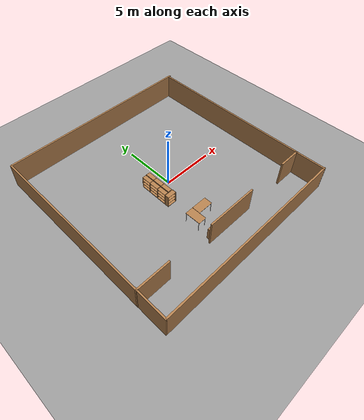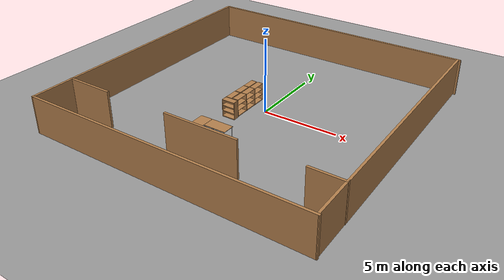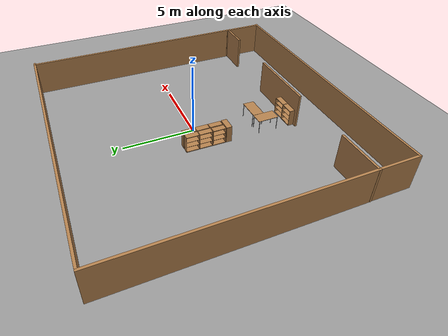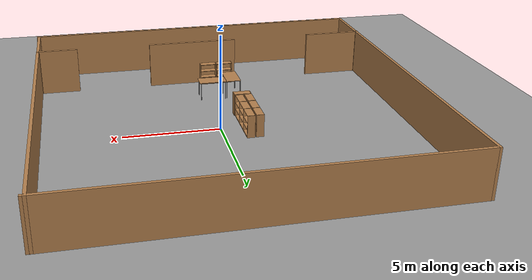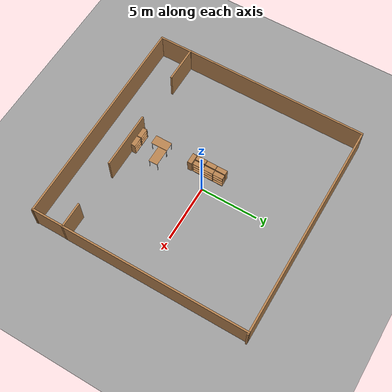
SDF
<sdf version="1.7">
 <world name="default">
  <model name="turtlebot3_house">
   <static>1</static>
   <link name="link">
    <collision name="collision">
     <geometry><plane><normal>0 0 1</normal><size>100 100</size></plane></geometry>
     <surface><friction><ode><mu>100</mu><mu2>50</mu2></ode></friction></surface>
    </collision>
    <visual name="visual">
     <cast_shadows>0</cast_shadows>
     <geometry><plane><normal>0 0 1</normal><size>100 100</size></plane></geometry>
     <material>
      <script><uri>file://media/materials/scripts/gazebo.material</uri><name>Gazebo/Grey</name></script>
     </material>
    </visual>
   </link>
  </model>
  <model name="bookshelf_clone_1_clone_clone_4">
   <static>1</static>
   <link name="link">
    <inertial><mass>1</mass></inertial>
    <collision name="back">
     <pose>0 0.005 0.6 0 -0 0</pose>
     <geometry><box><size>0.9 0.01 1.2</size></box></geometry>
    </collision>
    <visual name="visual1">
     <pose>0 0.005 0.6 0 -0 0</pose>
     <geometry><box><size>0.9 0.01 1.2</size></box></geometry>
     <material>
      <script><uri>file://media/materials/scripts/gazebo.material</uri><name>Gazebo/Wood</name></script>
     </material>
    </visual>
    <collision name="left_side">
     <pose>0.45 -0.195 0.6 0 -0 0</pose>
     <geometry><box><size>0.02 0.4 1.2</size></box></geometry>
    </collision>
    <visual name="visual2">
     <pose>0.45 -0.195 0.6 0 -0 0</pose>
     <geometry><box><size>0.02 0.4 1.2</size></box></geometry>
     <material>
      <script><uri>file://media/materials/scripts/gazebo.material</uri><name>Gazebo/Wood</name></script>
     </material>
    </visual>
    <collision name="right_side">
     <pose>-0.45 -0.195 0.6 0 -0 0</pose>
     <geometry><box><size>0.02 0.4 1.2</size></box></geometry>
    </collision>
    <visual name="visual3">
     <pose>-0.45 -0.195 0.6 0 -0 0</pose>
     <geometry><box><size>0.02 0.4 1.2</size></box></geometry>
     <material>
      <script><uri>file://media/materials/scripts/gazebo.material</uri><name>Gazebo/Wood</name></script>
     </material>
    </visual>
    <collision name="bottom">
     <pose>0 -0.195 0.03 0 -0 0</pose>
     <geometry><box><size>0.88 0.4 0.06</size></box></geometry>
    </collision>
    <visual name="visual4">
     <pose>0 -0.195 0.03 0 -0 0</pose>
     <geometry><box><size>0.88 0.4 0.06</size></box></geometry>
     <material>
      <script><uri>file://media/materials/scripts/gazebo.material</uri><name>Gazebo/Wood</name></script>
     </material>
    </visual>
    <collision name="top">
     <pose>0 -0.195 1.19 0 -0 0</pose>
     <geometry><box><size>0.88 0.4 0.02</size></box></geometry>
    </collision>
    <visual name="visual5">
     <pose>0 -0.195 1.19 0 -0 0</pose>
     <geometry><box><size>0.88 0.4 0.02</size></box></geometry>
     <material>
      <script><uri>file://media/materials/scripts/gazebo.material</uri><name>Gazebo/Wood</name></script>
     </material>
    </visual>
    <collision name="low_shelf">
     <pose>0 -0.195 0.43 0 -0 0</pose>
     <geometry><box><size>0.88 0.4 0.02</size></box></geometry>
    </collision>
    <visual name="visual6">
     <pose>0 -0.195 0.43 0 -0 0</pose>
     <geometry><box><size>0.88 0.4 0.02</size></box></geometry>
     <material>
      <script><uri>file://media/materials/scripts/gazebo.material</uri><name>Gazebo/Wood</name></script>
     </material>
    </visual>
    <collision name="high_shelf">
     <pose>0 -0.195 0.8 0 -0 0</pose>
     <geometry><box><size>0.88 0.4 0.02</size></box></geometry>
    </collision>
    <visual name="visual7">
     <pose>0 -0.195 0.8 0 -0 0</pose>
     <geometry><box><size>0.88 0.4 0.02</size></box></geometry>
     <material>
      <script><uri>file://media/materials/scripts/gazebo.material</uri><name>Gazebo/Wood</name></script>
     </material>
    </visual>
   </link>
   <pose>-0.54357 -6.77017 0 0 0 -3.12822</pose>
  </model>
  <model name="bookshelf_clone_1_clone_clone_5">
   <static>1</static>
   <link name="link">
    <inertial><mass>1</mass></inertial>
    <collision name="back">
     <pose>0 0.005 0.6 0 -0 0</pose>
     <geometry><box><size>0.9 0.01 1.2</size></box></geometry>
    </collision>
    <visual name="visual1">
     <pose>0 0.005 0.6 0 -0 0</pose>
     <geometry><box><size>0.9 0.01 1.2</size></box></geometry>
     <material>
      <script><uri>file://media/materials/scripts/gazebo.material</uri><name>Gazebo/Wood</name></script>
     </material>
    </visual>
    <collision name="left_side">
     <pose>0.45 -0.195 0.6 0 -0 0</pose>
     <geometry><box><size>0.02 0.4 1.2</size></box></geometry>
    </collision>
    <visual name="visual2">
     <pose>0.45 -0.195 0.6 0 -0 0</pose>
     <geometry><box><size>0.02 0.4 1.2</size></box></geometry>
     <material>
      <script><uri>file://media/materials/scripts/gazebo.material</uri><name>Gazebo/Wood</name></script>
     </material>
    </visual>
    <collision name="right_side">
     <pose>-0.45 -0.195 0.6 0 -0 0</pose>
     <geometry><box><size>0.02 0.4 1.2</size></box></geometry>
    </collision>
    <visual name="visual3">
     <pose>-0.45 -0.195 0.6 0 -0 0</pose>
     <geometry><box><size>0.02 0.4 1.2</size></box></geometry>
     <material>
      <script><uri>file://media/materials/scripts/gazebo.material</uri><name>Gazebo/Wood</name></script>
     </material>
    </visual>
    <collision name="bottom">
     <pose>0 -0.195 0.03 0 -0 0</pose>
     <geometry><box><size>0.88 0.4 0.06</size></box></geometry>
    </collision>
    <visual name="visual4">
     <pose>0 -0.195 0.03 0 -0 0</pose>
     <geometry><box><size>0.88 0.4 0.06</size></box></geometry>
     <material>
      <script><uri>file://media/materials/scripts/gazebo.material</uri><name>Gazebo/Wood</name></script>
     </material>
    </visual>
    <collision name="top">
     <pose>0 -0.195 1.19 0 -0 0</pose>
     <geometry><box><size>0.88 0.4 0.02</size></box></geometry>
    </collision>
    <visual name="visual5">
     <pose>0 -0.195 1.19 0 -0 0</pose>
     <geometry><box><size>0.88 0.4 0.02</size></box></geometry>
     <material>
      <script><uri>file://media/materials/scripts/gazebo.material</uri><name>Gazebo/Wood</name></script>
     </material>
    </visual>
    <collision name="low_shelf">
     <pose>0 -0.195 0.43 0 -0 0</pose>
     <geometry><box><size>0.88 0.4 0.02</size></box></geometry>
    </collision>
    <visual name="visual6">
     <pose>0 -0.195 0.43 0 -0 0</pose>
     <geometry><box><size>0.88 0.4 0.02</size></box></geometry>
     <material>
      <script><uri>file://media/materials/scripts/gazebo.material</uri><name>Gazebo/Wood</name></script>
     </material>
    </visual>
    <collision name="high_shelf">
     <pose>0 -0.195 0.8 0 -0 0</pose>
     <geometry><box><size>0.88 0.4 0.02</size></box></geometry>
    </collision>
    <visual name="visual7">
     <pose>0 -0.195 0.8 0 -0 0</pose>
     <geometry><box><size>0.88 0.4 0.02</size></box></geometry>
     <material>
      <script><uri>file://media/materials/scripts/gazebo.material</uri><name>Gazebo/Wood</name></script>
     </material>
    </visual>
   </link>
   <pose>-1.47846 -6.76423 0 0 0 -3.12822</pose>
  </model>
  <model name="bookshelf_clone_3">
   <static>1</static>
   <link name="link">
    <inertial><mass>1</mass></inertial>
    <collision name="back">
     <pose>0 0.005 0.6 0 -0 0</pose>
     <geometry><box><size>0.9 0.01 1.2</size></box></geometry>
    </collision>
    <visual name="visual1">
     <pose>0 0.005 0.6 0 -0 0</pose>
     <geometry><box><size>0.9 0.01 1.2</size></box></geometry>
     <material>
      <script><uri>file://media/materials/scripts/gazebo.material</uri><name>Gazebo/Wood</name></script>
     </material>
    </visual>
    <collision name="left_side">
     <pose>0.45 -0.195 0.6 0 -0 0</pose>
     <geometry><box><size>0.02 0.4 1.2</size></box></geometry>
    </collision>
    <visual name="visual2">
     <pose>0.45 -0.195 0.6 0 -0 0</pose>
     <geometry><box><size>0.02 0.4 1.2</size></box></geometry>
     <material>
      <script><uri>file://media/materials/scripts/gazebo.material</uri><name>Gazebo/Wood</name></script>
     </material>
    </visual>
    <collision name="right_side">
     <pose>-0.45 -0.195 0.6 0 -0 0</pose>
     <geometry><box><size>0.02 0.4 1.2</size></box></geometry>
    </collision>
    <visual name="visual3">
     <pose>-0.45 -0.195 0.6 0 -0 0</pose>
     <geometry><box><size>0.02 0.4 1.2</size></box></geometry>
     <material>
      <script><uri>file://media/materials/scripts/gazebo.material</uri><name>Gazebo/Wood</name></script>
     </material>
    </visual>
    <collision name="bottom">
     <pose>0 -0.195 0.03 0 -0 0</pose>
     <geometry><box><size>0.88 0.4 0.06</size></box></geometry>
    </collision>
    <visual name="visual4">
     <pose>0 -0.195 0.03 0 -0 0</pose>
     <geometry><box><size>0.88 0.4 0.06</size></box></geometry>
     <material>
      <script><uri>file://media/materials/scripts/gazebo.material</uri><name>Gazebo/Wood</name></script>
     </material>
    </visual>
    <collision name="top">
     <pose>0 -0.195 1.19 0 -0 0</pose>
     <geometry><box><size>0.88 0.4 0.02</size></box></geometry>
    </collision>
    <visual name="visual5">
     <pose>0 -0.195 1.19 0 -0 0</pose>
     <geometry><box><size>0.88 0.4 0.02</size></box></geometry>
     <material>
      <script><uri>file://media/materials/scripts/gazebo.material</uri><name>Gazebo/Wood</name></script>
     </material>
    </visual>
    <collision name="low_shelf">
     <pose>0 -0.195 0.43 0 -0 0</pose>
     <geometry><box><size>0.88 0.4 0.02</size></box></geometry>
    </collision>
    <visual name="visual6">
     <pose>0 -0.195 0.43 0 -0 0</pose>
     <geometry><box><size>0.88 0.4 0.02</size></box></geometry>
     <material>
      <script><uri>file://media/materials/scripts/gazebo.material</uri><name>Gazebo/Wood</name></script>
     </material>
    </visual>
    <collision name="high_shelf">
     <pose>0 -0.195 0.8 0 -0 0</pose>
     <geometry><box><size>0.88 0.4 0.02</size></box></geometry>
    </collision>
    <visual name="visual7">
     <pose>0 -0.195 0.8 0 -0 0</pose>
     <geometry><box><size>0.88 0.4 0.02</size></box></geometry>
     <material>
      <script><uri>file://media/materials/scripts/gazebo.material</uri><name>Gazebo/Wood</name></script>
     </material>
    </visual>
   </link>
   <pose>-1.49506 -1.57268 0 0 -0 0</pose>
  </model>
  <model name="bookshelf_clone_2_clone_7">
   <static>1</static>
   <link name="link">
    <inertial><mass>1</mass></inertial>
    <collision name="back">
     <pose>0 0.005 0.6 0 -0 0</pose>
     <geometry><box><size>0.9 0.01 1.2</size></box></geometry>
    </collision>
    <visual name="visual1">
     <pose>0 0.005 0.6 0 -0 0</pose>
     <geometry><box><size>0.9 0.01 1.2</size></box></geometry>
     <material>
      <script><uri>file://media/materials/scripts/gazebo.material</uri><name>Gazebo/Wood</name></script>
     </material>
    </visual>
    <collision name="left_side">
     <pose>0.45 -0.195 0.6 0 -0 0</pose>
     <geometry><box><size>0.02 0.4 1.2</size></box></geometry>
    </collision>
    <visual name="visual2">
     <pose>0.45 -0.195 0.6 0 -0 0</pose>
     <geometry><box><size>0.02 0.4 1.2</size></box></geometry>
     <material>
      <script><uri>file://media/materials/scripts/gazebo.material</uri><name>Gazebo/Wood</name></script>
     </material>
    </visual>
    <collision name="right_side">
     <pose>-0.45 -0.195 0.6 0 -0 0</pose>
     <geometry><box><size>0.02 0.4 1.2</size></box></geometry>
    </collision>
    <visual name="visual3">
     <pose>-0.45 -0.195 0.6 0 -0 0</pose>
     <geometry><box><size>0.02 0.4 1.2</size></box></geometry>
     <material>
      <script><uri>file://media/materials/scripts/gazebo.material</uri><name>Gazebo/Wood</name></script>
     </material>
    </visual>
    <collision name="bottom">
     <pose>0 -0.195 0.03 0 -0 0</pose>
     <geometry><box><size>0.88 0.4 0.06</size></box></geometry>
    </collision>
    <visual name="visual4">
     <pose>0 -0.195 0.03 0 -0 0</pose>
     <geometry><box><size>0.88 0.4 0.06</size></box></geometry>
     <material>
      <script><uri>file://media/materials/scripts/gazebo.material</uri><name>Gazebo/Wood</name></script>
     </material>
    </visual>
    <collision name="top">
     <pose>0 -0.195 1.19 0 -0 0</pose>
     <geometry><box><size>0.88 0.4 0.02</size></box></geometry>
    </collision>
    <visual name="visual5">
     <pose>0 -0.195 1.19 0 -0 0</pose>
     <geometry><box><size>0.88 0.4 0.02</size></box></geometry>
     <material>
      <script><uri>file://media/materials/scripts/gazebo.material</uri><name>Gazebo/Wood</name></script>
     </material>
    </visual>
    <collision name="low_shelf">
     <pose>0 -0.195 0.43 0 -0 0</pose>
     <geometry><box><size>0.88 0.4 0.02</size></box></geometry>
    </collision>
    <visual name="visual6">
     <pose>0 -0.195 0.43 0 -0 0</pose>
     <geometry><box><size>0.88 0.4 0.02</size></box></geometry>
     <material>
      <script><uri>file://media/materials/scripts/gazebo.material</uri><name>Gazebo/Wood</name></script>
     </material>
    </visual>
    <collision name="high_shelf">
     <pose>0 -0.195 0.8 0 -0 0</pose>
     <geometry><box><size>0.88 0.4 0.02</size></box></geometry>
    </collision>
    <visual name="visual7">
     <pose>0 -0.195 0.8 0 -0 0</pose>
     <geometry><box><size>0.88 0.4 0.02</size></box></geometry>
     <material>
      <script><uri>file://media/materials/scripts/gazebo.material</uri><name>Gazebo/Wood</name></script>
     </material>
    </visual>
   </link>
   <pose>-1.55839 -1.06853 0 0 0 -1.57136</pose>
  </model>
  <model name="bookshelf_clone_2_clone_8">
   <static>1</static>
   <link name="link">
    <inertial><mass>1</mass></inertial>
    <collision name="back">
     <pose>0 0.005 0.6 0 -0 0</pose>
     <geometry><box><size>0.9 0.01 1.2</size></box></geometry>
    </collision>
    <visual name="visual1">
     <pose>0 0.005 0.6 0 -0 0</pose>
     <geometry><box><size>0.9 0.01 1.2</size></box></geometry>
     <material>
      <script><uri>file://media/materials/scripts/gazebo.material</uri><name>Gazebo/Wood</name></script>
     </material>
    </visual>
    <collision name="left_side">
     <pose>0.45 -0.195 0.6 0 -0 0</pose>
     <geometry><box><size>0.02 0.4 1.2</size></box></geometry>
    </collision>
    <visual name="visual2">
     <pose>0.45 -0.195 0.6 0 -0 0</pose>
     <geometry><box><size>0.02 0.4 1.2</size></box></geometry>
     <material>
      <script><uri>file://media/materials/scripts/gazebo.material</uri><name>Gazebo/Wood</name></script>
     </material>
    </visual>
    <collision name="right_side">
     <pose>-0.45 -0.195 0.6 0 -0 0</pose>
     <geometry><box><size>0.02 0.4 1.2</size></box></geometry>
    </collision>
    <visual name="visual3">
     <pose>-0.45 -0.195 0.6 0 -0 0</pose>
     <geometry><box><size>0.02 0.4 1.2</size></box></geometry>
     <material>
      <script><uri>file://media/materials/scripts/gazebo.material</uri><name>Gazebo/Wood</name></script>
     </material>
    </visual>
    <collision name="bottom">
     <pose>0 -0.195 0.03 0 -0 0</pose>
     <geometry><box><size>0.88 0.4 0.06</size></box></geometry>
    </collision>
    <visual name="visual4">
     <pose>0 -0.195 0.03 0 -0 0</pose>
     <geometry><box><size>0.88 0.4 0.06</size></box></geometry>
     <material>
      <script><uri>file://media/materials/scripts/gazebo.material</uri><name>Gazebo/Wood</name></script>
     </material>
    </visual>
    <collision name="top">
     <pose>0 -0.195 1.19 0 -0 0</pose>
     <geometry><box><size>0.88 0.4 0.02</size></box></geometry>
    </collision>
    <visual name="visual5">
     <pose>0 -0.195 1.19 0 -0 0</pose>
     <geometry><box><size>0.88 0.4 0.02</size></box></geometry>
     <material>
      <script><uri>file://media/materials/scripts/gazebo.material</uri><name>Gazebo/Wood</name></script>
     </material>
    </visual>
    <collision name="low_shelf">
     <pose>0 -0.195 0.43 0 -0 0</pose>
     <geometry><box><size>0.88 0.4 0.02</size></box></geometry>
    </collision>
    <visual name="visual6">
     <pose>0 -0.195 0.43 0 -0 0</pose>
     <geometry><box><size>0.88 0.4 0.02</size></box></geometry>
     <material>
      <script><uri>file://media/materials/scripts/gazebo.material</uri><name>Gazebo/Wood</name></script>
     </material>
    </visual>
    <collision name="high_shelf">
     <pose>0 -0.195 0.8 0 -0 0</pose>
     <geometry><box><size>0.88 0.4 0.02</size></box></geometry>
    </collision>
    <visual name="visual7">
     <pose>0 -0.195 0.8 0 -0 0</pose>
     <geometry><box><size>0.88 0.4 0.02</size></box></geometry>
     <material>
      <script><uri>file://media/materials/scripts/gazebo.material</uri><name>Gazebo/Wood</name></script>
     </material>
    </visual>
   </link>
   <pose>-1.55046 -0.125995 0 0 0 -1.57136</pose>
  </model>
  <model name="bookshelf_clone_2_clone_9">
   <static>1</static>
   <link name="link">
    <inertial><mass>1</mass></inertial>
    <collision name="back">
     <pose>0 0.005 0.6 0 -0 0</pose>
     <geometry><box><size>0.9 0.01 1.2</size></box></geometry>
    </collision>
    <visual name="visual1">
     <pose>0 0.005 0.6 0 -0 0</pose>
     <geometry><box><size>0.9 0.01 1.2</size></box></geometry>
     <material>
      <script><uri>file://media/materials/scripts/gazebo.material</uri><name>Gazebo/Wood</name></script>
     </material>
    </visual>
    <collision name="left_side">
     <pose>0.45 -0.195 0.6 0 -0 0</pose>
     <geometry><box><size>0.02 0.4 1.2</size></box></geometry>
    </collision>
    <visual name="visual2">
     <pose>0.45 -0.195 0.6 0 -0 0</pose>
     <geometry><box><size>0.02 0.4 1.2</size></box></geometry>
     <material>
      <script><uri>file://media/materials/scripts/gazebo.material</uri><name>Gazebo/Wood</name></script>
     </material>
    </visual>
    <collision name="right_side">
     <pose>-0.45 -0.195 0.6 0 -0 0</pose>
     <geometry><box><size>0.02 0.4 1.2</size></box></geometry>
    </collision>
    <visual name="visual3">
     <pose>-0.45 -0.195 0.6 0 -0 0</pose>
     <geometry><box><size>0.02 0.4 1.2</size></box></geometry>
     <material>
      <script><uri>file://media/materials/scripts/gazebo.material</uri><name>Gazebo/Wood</name></script>
     </material>
    </visual>
    <collision name="bottom">
     <pose>0 -0.195 0.03 0 -0 0</pose>
     <geometry><box><size>0.88 0.4 0.06</size></box></geometry>
    </collision>
    <visual name="visual4">
     <pose>0 -0.195 0.03 0 -0 0</pose>
     <geometry><box><size>0.88 0.4 0.06</size></box></geometry>
     <material>
      <script><uri>file://media/materials/scripts/gazebo.material</uri><name>Gazebo/Wood</name></script>
     </material>
    </visual>
    <collision name="top">
     <pose>0 -0.195 1.19 0 -0 0</pose>
     <geometry><box><size>0.88 0.4 0.02</size></box></geometry>
    </collision>
    <visual name="visual5">
     <pose>0 -0.195 1.19 0 -0 0</pose>
     <geometry><box><size>0.88 0.4 0.02</size></box></geometry>
     <material>
      <script><uri>file://media/materials/scripts/gazebo.material</uri><name>Gazebo/Wood</name></script>
     </material>
    </visual>
    <collision name="low_shelf">
     <pose>0 -0.195 0.43 0 -0 0</pose>
     <geometry><box><size>0.88 0.4 0.02</size></box></geometry>
    </collision>
    <visual name="visual6">
     <pose>0 -0.195 0.43 0 -0 0</pose>
     <geometry><box><size>0.88 0.4 0.02</size></box></geometry>
     <material>
      <script><uri>file://media/materials/scripts/gazebo.material</uri><name>Gazebo/Wood</name></script>
     </material>
    </visual>
    <collision name="high_shelf">
     <pose>0 -0.195 0.8 0 -0 0</pose>
     <geometry><box><size>0.88 0.4 0.02</size></box></geometry>
    </collision>
    <visual name="visual7">
     <pose>0 -0.195 0.8 0 -0 0</pose>
     <geometry><box><size>0.88 0.4 0.02</size></box></geometry>
     <material>
      <script><uri>file://media/materials/scripts/gazebo.material</uri><name>Gazebo/Wood</name></script>
     </material>
    </visual>
   </link>
   <pose>-1.54661 0.804727 0 0 0 -1.57136</pose>
  </model>
  <model name="bookshelf_clone_2_clone_clone_0_clone_3_clone_clone_3">
   <static>1</static>
   <link name="link">
    <inertial><mass>1</mass></inertial>
    <collision name="back">
     <pose>0 0.005 0.6 0 -0 0</pose>
     <geometry><box><size>0.9 0.01 1.2</size></box></geometry>
    </collision>
    <visual name="visual1">
     <pose>0 0.005 0.6 0 -0 0</pose>
     <geometry><box><size>0.9 0.01 1.2</size></box></geometry>
     <material>
      <script><uri>file://media/materials/scripts/gazebo.material</uri><name>Gazebo/Wood</name></script>
     </material>
    </visual>
    <collision name="left_side">
     <pose>0.45 -0.195 0.6 0 -0 0</pose>
     <geometry><box><size>0.02 0.4 1.2</size></box></geometry>
    </collision>
    <visual name="visual2">
     <pose>0.45 -0.195 0.6 0 -0 0</pose>
     <geometry><box><size>0.02 0.4 1.2</size></box></geometry>
     <material>
      <script><uri>file://media/materials/scripts/gazebo.material</uri><name>Gazebo/Wood</name></script>
     </material>
    </visual>
    <collision name="right_side">
     <pose>-0.45 -0.195 0.6 0 -0 0</pose>
     <geometry><box><size>0.02 0.4 1.2</size></box></geometry>
    </collision>
    <visual name="visual3">
     <pose>-0.45 -0.195 0.6 0 -0 0</pose>
     <geometry><box><size>0.02 0.4 1.2</size></box></geometry>
     <material>
      <script><uri>file://media/materials/scripts/gazebo.material</uri><name>Gazebo/Wood</name></script>
     </material>
    </visual>
    <collision name="bottom">
     <pose>0 -0.195 0.03 0 -0 0</pose>
     <geometry><box><size>0.88 0.4 0.06</size></box></geometry>
    </collision>
    <visual name="visual4">
     <pose>0 -0.195 0.03 0 -0 0</pose>
     <geometry><box><size>0.88 0.4 0.06</size></box></geometry>
     <material>
      <script><uri>file://media/materials/scripts/gazebo.material</uri><name>Gazebo/Wood</name></script>
     </material>
    </visual>
    <collision name="top">
     <pose>0 -0.195 1.19 0 -0 0</pose>
     <geometry><box><size>0.88 0.4 0.02</size></box></geometry>
    </collision>
    <visual name="visual5">
     <pose>0 -0.195 1.19 0 -0 0</pose>
     <geometry><box><size>0.88 0.4 0.02</size></box></geometry>
     <material>
      <script><uri>file://media/materials/scripts/gazebo.material</uri><name>Gazebo/Wood</name></script>
     </material>
    </visual>
    <collision name="low_shelf">
     <pose>0 -0.195 0.43 0 -0 0</pose>
     <geometry><box><size>0.88 0.4 0.02</size></box></geometry>
    </collision>
    <visual name="visual6">
     <pose>0 -0.195 0.43 0 -0 0</pose>
     <geometry><box><size>0.88 0.4 0.02</size></box></geometry>
     <material>
      <script><uri>file://media/materials/scripts/gazebo.material</uri><name>Gazebo/Wood</name></script>
     </material>
    </visual>
    <collision name="high_shelf">
     <pose>0 -0.195 0.8 0 -0 0</pose>
     <geometry><box><size>0.88 0.4 0.02</size></box></geometry>
    </collision>
    <visual name="visual7">
     <pose>0 -0.195 0.8 0 -0 0</pose>
     <geometry><box><size>0.88 0.4 0.02</size></box></geometry>
     <material>
      <script><uri>file://media/materials/scripts/gazebo.material</uri><name>Gazebo/Wood</name></script>
     </material>
    </visual>
   </link>
   <pose>-1.47001 0.822173 0 0 -0 1.57553</pose>
  </model>
  <model name="bookshelf_clone_2_clone_clone_0_clone_3_clone_clone_4">
   <static>1</static>
   <link name="link">
    <inertial><mass>1</mass></inertial>
    <collision name="back">
     <pose>0 0.005 0.6 0 -0 0</pose>
     <geometry><box><size>0.9 0.01 1.2</size></box></geometry>
    </collision>
    <visual name="visual1">
     <pose>0 0.005 0.6 0 -0 0</pose>
     <geometry><box><size>0.9 0.01 1.2</size></box></geometry>
     <material>
      <script><uri>file://media/materials/scripts/gazebo.material</uri><name>Gazebo/Wood</name></script>
     </material>
    </visual>
    <collision name="left_side">
     <pose>0.45 -0.195 0.6 0 -0 0</pose>
     <geometry><box><size>0.02 0.4 1.2</size></box></geometry>
    </collision>
    <visual name="visual2">
     <pose>0.45 -0.195 0.6 0 -0 0</pose>
     <geometry><box><size>0.02 0.4 1.2</size></box></geometry>
     <material>
      <script><uri>file://media/materials/scripts/gazebo.material</uri><name>Gazebo/Wood</name></script>
     </material>
    </visual>
    <collision name="right_side">
     <pose>-0.45 -0.195 0.6 0 -0 0</pose>
     <geometry><box><size>0.02 0.4 1.2</size></box></geometry>
    </collision>
    <visual name="visual3">
     <pose>-0.45 -0.195 0.6 0 -0 0</pose>
     <geometry><box><size>0.02 0.4 1.2</size></box></geometry>
     <material>
      <script><uri>file://media/materials/scripts/gazebo.material</uri><name>Gazebo/Wood</name></script>
     </material>
    </visual>
    <collision name="bottom">
     <pose>0 -0.195 0.03 0 -0 0</pose>
     <geometry><box><size>0.88 0.4 0.06</size></box></geometry>
    </collision>
    <visual name="visual4">
     <pose>0 -0.195 0.03 0 -0 0</pose>
     <geometry><box><size>0.88 0.4 0.06</size></box></geometry>
     <material>
      <script><uri>file://media/materials/scripts/gazebo.material</uri><name>Gazebo/Wood</name></script>
     </material>
    </visual>
    <collision name="top">
     <pose>0 -0.195 1.19 0 -0 0</pose>
     <geometry><box><size>0.88 0.4 0.02</size></box></geometry>
    </collision>
    <visual name="visual5">
     <pose>0 -0.195 1.19 0 -0 0</pose>
     <geometry><box><size>0.88 0.4 0.02</size></box></geometry>
     <material>
      <script><uri>file://media/materials/scripts/gazebo.material</uri><name>Gazebo/Wood</name></script>
     </material>
    </visual>
    <collision name="low_shelf">
     <pose>0 -0.195 0.43 0 -0 0</pose>
     <geometry><box><size>0.88 0.4 0.02</size></box></geometry>
    </collision>
    <visual name="visual6">
     <pose>0 -0.195 0.43 0 -0 0</pose>
     <geometry><box><size>0.88 0.4 0.02</size></box></geometry>
     <material>
      <script><uri>file://media/materials/scripts/gazebo.material</uri><name>Gazebo/Wood</name></script>
     </material>
    </visual>
    <collision name="high_shelf">
     <pose>0 -0.195 0.8 0 -0 0</pose>
     <geometry><box><size>0.88 0.4 0.02</size></box></geometry>
    </collision>
    <visual name="visual7">
     <pose>0 -0.195 0.8 0 -0 0</pose>
     <geometry><box><size>0.88 0.4 0.02</size></box></geometry>
     <material>
      <script><uri>file://media/materials/scripts/gazebo.material</uri><name>Gazebo/Wood</name></script>
     </material>
    </visual>
   </link>
   <pose>-1.47226 -0.103286 0 0 -0 1.57553</pose>
  </model>
  <model name="bookshelf_clone_2_clone_clone_0_clone_3_clone_clone_5">
   <static>1</static>
   <link name="link">
    <inertial><mass>1</mass></inertial>
    <collision name="back">
     <pose>0 0.005 0.6 0 -0 0</pose>
     <geometry><box><size>0.9 0.01 1.2</size></box></geometry>
    </collision>
    <visual name="visual1">
     <pose>0 0.005 0.6 0 -0 0</pose>
     <geometry><box><size>0.9 0.01 1.2</size></box></geometry>
     <material>
      <script><uri>file://media/materials/scripts/gazebo.material</uri><name>Gazebo/Wood</name></script>
     </material>
    </visual>
    <collision name="left_side">
     <pose>0.45 -0.195 0.6 0 -0 0</pose>
     <geometry><box><size>0.02 0.4 1.2</size></box></geometry>
    </collision>
    <visual name="visual2">
     <pose>0.45 -0.195 0.6 0 -0 0</pose>
     <geometry><box><size>0.02 0.4 1.2</size></box></geometry>
     <material>
      <script><uri>file://media/materials/scripts/gazebo.material</uri><name>Gazebo/Wood</name></script>
     </material>
    </visual>
    <collision name="right_side">
     <pose>-0.45 -0.195 0.6 0 -0 0</pose>
     <geometry><box><size>0.02 0.4 1.2</size></box></geometry>
    </collision>
    <visual name="visual3">
     <pose>-0.45 -0.195 0.6 0 -0 0</pose>
     <geometry><box><size>0.02 0.4 1.2</size></box></geometry>
     <material>
      <script><uri>file://media/materials/scripts/gazebo.material</uri><name>Gazebo/Wood</name></script>
     </material>
    </visual>
    <collision name="bottom">
     <pose>0 -0.195 0.03 0 -0 0</pose>
     <geometry><box><size>0.88 0.4 0.06</size></box></geometry>
    </collision>
    <visual name="visual4">
     <pose>0 -0.195 0.03 0 -0 0</pose>
     <geometry><box><size>0.88 0.4 0.06</size></box></geometry>
     <material>
      <script><uri>file://media/materials/scripts/gazebo.material</uri><name>Gazebo/Wood</name></script>
     </material>
    </visual>
    <collision name="top">
     <pose>0 -0.195 1.19 0 -0 0</pose>
     <geometry><box><size>0.88 0.4 0.02</size></box></geometry>
    </collision>
    <visual name="visual5">
     <pose>0 -0.195 1.19 0 -0 0</pose>
     <geometry><box><size>0.88 0.4 0.02</size></box></geometry>
     <material>
      <script><uri>file://media/materials/scripts/gazebo.material</uri><name>Gazebo/Wood</name></script>
     </material>
    </visual>
    <collision name="low_shelf">
     <pose>0 -0.195 0.43 0 -0 0</pose>
     <geometry><box><size>0.88 0.4 0.02</size></box></geometry>
    </collision>
    <visual name="visual6">
     <pose>0 -0.195 0.43 0 -0 0</pose>
     <geometry><box><size>0.88 0.4 0.02</size></box></geometry>
     <material>
      <script><uri>file://media/materials/scripts/gazebo.material</uri><name>Gazebo/Wood</name></script>
     </material>
    </visual>
    <collision name="high_shelf">
     <pose>0 -0.195 0.8 0 -0 0</pose>
     <geometry><box><size>0.88 0.4 0.02</size></box></geometry>
    </collision>
    <visual name="visual7">
     <pose>0 -0.195 0.8 0 -0 0</pose>
     <geometry><box><size>0.88 0.4 0.02</size></box></geometry>
     <material>
      <script><uri>file://media/materials/scripts/gazebo.material</uri><name>Gazebo/Wood</name></script>
     </material>
    </visual>
   </link>
   <pose>-1.46913 -1.03778 0 0 -0 1.57553</pose>
  </model>
  <model name="table_clone_0">
   <static>1</static>
   <link name="link">
    <collision name="surface">
     <pose>0 0 1 0 -0 0</pose>
     <geometry><box><size>1.5 0.8 0.03</size></box></geometry>
     <surface><friction><ode><mu>0.6</mu><mu2>0.6</mu2></ode></friction></surface>
    </collision>
    <visual name="visual1">
     <pose>0 0 1 0 -0 0</pose>
     <geometry><box><size>1.5 0.8 0.03</size></box></geometry>
     <material>
      <script><uri>file://media/materials/scripts/gazebo.material</uri><name>Gazebo/Wood</name></script>
     </material>
    </visual>
    <collision name="front_left_leg">
     <pose>0.68 0.38 0.5 0 -0 0</pose>
     <geometry><cylinder><radius>0.02</radius><length>1</length></cylinder></geometry>
    </collision>
    <visual name="front_left_leg">
     <pose>0.68 0.38 0.5 0 -0 0</pose>
     <geometry><cylinder><radius>0.02</radius><length>1</length></cylinder></geometry>
     <material>
      <script><uri>file://media/materials/scripts/gazebo.material</uri><name>Gazebo/Grey</name></script>
     </material>
    </visual>
    <collision name="front_right_leg">
     <pose>0.68 -0.38 0.5 0 -0 0</pose>
     <geometry><cylinder><radius>0.02</radius><length>1</length></cylinder></geometry>
    </collision>
    <visual name="front_right_leg">
     <pose>0.68 -0.38 0.5 0 -0 0</pose>
     <geometry><cylinder><radius>0.02</radius><length>1</length></cylinder></geometry>
     <material>
      <script><uri>file://media/materials/scripts/gazebo.material</uri><name>Gazebo/Grey</name></script>
     </material>
    </visual>
    <collision name="back_right_leg">
     <pose>-0.68 -0.38 0.5 0 -0 0</pose>
     <geometry><cylinder><radius>0.02</radius><length>1</length></cylinder></geometry>
    </collision>
    <visual name="back_right_leg">
     <pose>-0.68 -0.38 0.5 0 -0 0</pose>
     <geometry><cylinder><radius>0.02</radius><length>1</length></cylinder></geometry>
     <material>
      <script><uri>file://media/materials/scripts/gazebo.material</uri><name>Gazebo/Grey</name></script>
     </material>
    </visual>
    <collision name="back_left_leg">
     <pose>-0.68 0.38 0.5 0 -0 0</pose>
     <geometry><cylinder><radius>0.02</radius><length>1</length></cylinder></geometry>
    </collision>
    <visual name="back_left_leg">
     <pose>-0.68 0.38 0.5 0 -0 0</pose>
     <geometry><cylinder><radius>0.02</radius><length>1</length></cylinder></geometry>
     <material>
      <script><uri>file://media/materials/scripts/gazebo.material</uri><name>Gazebo/Grey</name></script>
     </material>
    </visual>
   </link>
   <pose>-0.380151 -4.37685 0 0 -0 0</pose>
  </model>
  <model name="table_clone_1">
   <static>1</static>
   <link name="link">
    <collision name="surface">
     <pose>0 0 1 0 -0 0</pose>
     <geometry><box><size>1.5 0.8 0.03</size></box></geometry>
     <surface><friction><ode><mu>0.6</mu><mu2>0.6</mu2></ode></friction></surface>
    </collision>
    <visual name="visual1">
     <pose>0 0 1 0 -0 0</pose>
     <geometry><box><size>1.5 0.8 0.03</size></box></geometry>
     <material>
      <script><uri>file://media/materials/scripts/gazebo.material</uri><name>Gazebo/Wood</name></script>
     </material>
    </visual>
    <collision name="front_left_leg">
     <pose>0.68 0.38 0.5 0 -0 0</pose>
     <geometry><cylinder><radius>0.02</radius><length>1</length></cylinder></geometry>
    </collision>
    <visual name="front_left_leg">
     <pose>0.68 0.38 0.5 0 -0 0</pose>
     <geometry><cylinder><radius>0.02</radius><length>1</length></cylinder></geometry>
     <material>
      <script><uri>file://media/materials/scripts/gazebo.material</uri><name>Gazebo/Grey</name></script>
     </material>
    </visual>
    <collision name="front_right_leg">
     <pose>0.68 -0.38 0.5 0 -0 0</pose>
     <geometry><cylinder><radius>0.02</radius><length>1</length></cylinder></geometry>
    </collision>
    <visual name="front_right_leg">
     <pose>0.68 -0.38 0.5 0 -0 0</pose>
     <geometry><cylinder><radius>0.02</radius><length>1</length></cylinder></geometry>
     <material>
      <script><uri>file://media/materials/scripts/gazebo.material</uri><name>Gazebo/Grey</name></script>
     </material>
    </visual>
    <collision name="back_right_leg">
     <pose>-0.68 -0.38 0.5 0 -0 0</pose>
     <geometry><cylinder><radius>0.02</radius><length>1</length></cylinder></geometry>
    </collision>
    <visual name="back_right_leg">
     <pose>-0.68 -0.38 0.5 0 -0 0</pose>
     <geometry><cylinder><radius>0.02</radius><length>1</length></cylinder></geometry>
     <material>
      <script><uri>file://media/materials/scripts/gazebo.material</uri><name>Gazebo/Grey</name></script>
     </material>
    </visual>
    <collision name="back_left_leg">
     <pose>-0.68 0.38 0.5 0 -0 0</pose>
     <geometry><cylinder><radius>0.02</radius><length>1</length></cylinder></geometry>
    </collision>
    <visual name="back_left_leg">
     <pose>-0.68 0.38 0.5 0 -0 0</pose>
     <geometry><cylinder><radius>0.02</radius><length>1</length></cylinder></geometry>
     <material>
      <script><uri>file://media/materials/scripts/gazebo.material</uri><name>Gazebo/Grey</name></script>
     </material>
    </visual>
   </link>
   <pose>-1.53806 -4.7313 0 0 -0 1.58011</pose>
  </model>
  <model name="mart_walls">
   <link name="Wall_10">
    <pose>0.674648 -8.01815 0 0 -0 0</pose>
    <visual name="Wall_10_Visual">
     <pose>0 0 1.25 0 -0 0</pose>
     <geometry><box><size>5 0.15 2.5</size></box></geometry>
     <material>
      <script><uri>file://media/materials/scripts/gazebo.material</uri><name>Gazebo/Wood</name></script>
      <ambient>1 1 1 1</ambient>
      <shader type="pixel"/>
     </material>
     <meta><layer>0</layer></meta>
    </visual>
    <collision name="Wall_10_Collision">
     <pose>0 0 1.25 0 -0 0</pose>
     <geometry><box><size>5 0.15 2.5</size></box></geometry>
     <surface>
      <friction>
       <ode><mu>1</mu><mu2>1</mu2><fdir1>0 0 0</fdir1><slip1>0</slip1><slip2>0</slip2></ode>
       <torsional>
        <coefficient>1</coefficient>
        <patch_radius>0</patch_radius>
        <surface_radius>0</surface_radius>
        <use_patch_radius>1</use_patch_radius>
        <ode><slip>0</slip></ode>
       </torsional>
      </friction>
      <bounce><restitution_coefficient>0</restitution_coefficient><threshold>1e+06</threshold></bounce>
      <contact>
       <collide_without_contact>0</collide_without_contact>
       <collide_without_contact_bitmask>1</collide_without_contact_bitmask>
       <collide_bitmask>1</collide_bitmask>
       <ode>
        <soft_cfm>0</soft_cfm>
        <soft_erp>0.2</soft_erp>
        <kp>1e+13</kp>
        <kd>1</kd>
        <max_vel>0.01</max_vel>
        <min_depth>0</min_depth>
       </ode>
       <bullet>
        <split_impulse>1</split_impulse>
        <split_impulse_penetration_threshold>-0.01</split_impulse_penetration_threshold>
        <soft_cfm>0</soft_cfm>
        <soft_erp>0.2</soft_erp>
        <kp>1e+13</kp>
        <kd>1</kd>
       </bullet>
      </contact>
     </surface>
    </collision>
   </link>
   <link name="Wall_3">
    <pose>-9.41858 0 0 0 -0 1.5708</pose>
    <visual name="Wall_3_Visual">
     <pose>0 0 1.25 0 -0 0</pose>
     <geometry><box><size>16.25 0.15 2.5</size></box></geometry>
     <material>
      <script><uri>file://media/materials/scripts/gazebo.material</uri><name>Gazebo/Wood</name></script>
      <ambient>1 1 1 1</ambient>
      <shader type="pixel"/>
     </material>
     <meta><layer>0</layer></meta>
    </visual>
    <collision name="Wall_3_Collision">
     <pose>0 0 1.25 0 -0 0</pose>
     <geometry><box><size>16.25 0.15 2.5</size></box></geometry>
     <surface>
      <friction>
       <ode><mu>1</mu><mu2>1</mu2><fdir1>0 0 0</fdir1><slip1>0</slip1><slip2>0</slip2></ode>
       <torsional>
        <coefficient>1</coefficient>
        <patch_radius>0</patch_radius>
        <surface_radius>0</surface_radius>
        <use_patch_radius>1</use_patch_radius>
        <ode><slip>0</slip></ode>
       </torsional>
      </friction>
      <bounce><restitution_coefficient>0</restitution_coefficient><threshold>1e+06</threshold></bounce>
      <contact>
       <collide_without_contact>0</collide_without_contact>
       <collide_without_contact_bitmask>1</collide_without_contact_bitmask>
       <collide_bitmask>1</collide_bitmask>
       <ode>
        <soft_cfm>0</soft_cfm>
        <soft_erp>0.2</soft_erp>
        <kp>1e+13</kp>
        <kd>1</kd>
        <max_vel>0.01</max_vel>
        <min_depth>0</min_depth>
       </ode>
       <bullet>
        <split_impulse>1</split_impulse>
        <split_impulse_penetration_threshold>-0.01</split_impulse_penetration_threshold>
        <soft_cfm>0</soft_cfm>
        <soft_erp>0.2</soft_erp>
        <kp>1e+13</kp>
        <kd>1</kd>
       </bullet>
      </contact>
     </surface>
    </collision>
   </link>
   <link name="Wall_4">
    <pose>0.138305 8.05 0 0 -0 0</pose>
    <inertial>
     <mass>1</mass>
     <inertia><ixx>1</ixx><ixy>0</ixy><ixz>0</ixz><iyy>1</iyy><iyz>0</iyz><izz>1</izz></inertia>
    </inertial>
    <visual name="Wall_4_Visual">
     <pose>0 0 1.25 0 -0 0</pose>
     <geometry><box><size>19 0.15 2.5</size></box></geometry>
     <material>
      <script><uri>file://media/materials/scripts/gazebo.material</uri><name>Gazebo/Wood</name></script>
      <ambient>1 1 1 1</ambient>
      <shader type="pixel"><normal_map>__default__</normal_map></shader>
      <diffuse>1 1 1 1</diffuse>
      <specular>0.2 0.2 0.2 1</specular>
      <emissive>0 0 0 1</emissive>
     </material>
     <meta><layer>0</layer></meta>
    </visual>
    <collision name="Wall_4_Collision">
     <pose>0 0 1.25 0 -0 0</pose>
     <geometry><box><size>19 0.15 2.5</size></box></geometry>
     <surface>
      <friction>
       <ode><mu>1</mu><mu2>1</mu2><fdir1>0 0 0</fdir1><slip1>0</slip1><slip2>0</slip2></ode>
       <torsional>
        <coefficient>1</coefficient>
        <patch_radius>0</patch_radius>
        <surface_radius>0</surface_radius>
        <use_patch_radius>1</use_patch_radius>
        <ode><slip>0</slip></ode>
       </torsional>
      </friction>
      <bounce><restitution_coefficient>0</restitution_coefficient><threshold>1e+06</threshold></bounce>
      <contact>
       <collide_without_contact>0</collide_without_contact>
       <collide_without_contact_bitmask>1</collide_without_contact_bitmask>
       <collide_bitmask>1</collide_bitmask>
       <ode>
        <soft_cfm>0</soft_cfm>
        <soft_erp>0.2</soft_erp>
        <kp>1e+13</kp>
        <kd>1</kd>
        <max_vel>0.01</max_vel>
        <min_depth>0</min_depth>
       </ode>
       <bullet>
        <split_impulse>1</split_impulse>
        <split_impulse_penetration_threshold>-0.01</split_impulse_penetration_threshold>
        <soft_cfm>0</soft_cfm>
        <soft_erp>0.2</soft_erp>
        <kp>1e+13</kp>
        <kd>1</kd>
       </bullet>
      </contact>
     </surface>
    </collision>
   </link>
   <link name="Wall_5">
    <pose>9.43142 0 0 0 0 -1.5708</pose>
    <visual name="Wall_5_Visual">
     <pose>0 0 1.25 0 -0 0</pose>
     <geometry><box><size>16.25 0.15 2.5</size></box></geometry>
     <material>
      <script><uri>file://media/materials/scripts/gazebo.material</uri><name>Gazebo/Wood</name></script>
      <ambient>1 1 1 1</ambient>
      <shader type="pixel"/>
     </material>
     <meta><layer>0</layer></meta>
    </visual>
    <collision name="Wall_5_Collision">
     <pose>0 0 1.25 0 -0 0</pose>
     <geometry><box><size>16.25 0.15 2.5</size></box></geometry>
     <surface>
      <friction>
       <ode><mu>1</mu><mu2>1</mu2><fdir1>0 0 0</fdir1><slip1>0</slip1><slip2>0</slip2></ode>
       <torsional>
        <coefficient>1</coefficient>
        <patch_radius>0</patch_radius>
        <surface_radius>0</surface_radius>
        <use_patch_radius>1</use_patch_radius>
        <ode><slip>0</slip></ode>
       </torsional>
      </friction>
      <bounce><restitution_coefficient>0</restitution_coefficient><threshold>1e+06</threshold></bounce>
      <contact>
       <collide_without_contact>0</collide_without_contact>
       <collide_without_contact_bitmask>1</collide_without_contact_bitmask>
       <collide_bitmask>1</collide_bitmask>
       <ode>
        <soft_cfm>0</soft_cfm>
        <soft_erp>0.2</soft_erp>
        <kp>1e+13</kp>
        <kd>1</kd>
        <max_vel>0.01</max_vel>
        <min_depth>0</min_depth>
       </ode>
       <bullet>
        <split_impulse>1</split_impulse>
        <split_impulse_penetration_threshold>-0.01</split_impulse_penetration_threshold>
        <soft_cfm>0</soft_cfm>
        <soft_erp>0.2</soft_erp>
        <kp>1e+13</kp>
        <kd>1</kd>
       </bullet>
      </contact>
     </surface>
    </collision>
   </link>
   <link name="Wall_6">
    <pose>8.38142 -8.05 0 0 -0 3.14159</pose>
    <visual name="Wall_6_Visual">
     <pose>0 0 1.25 0 -0 0</pose>
     <geometry><box><size>2.25 0.15 2.5</size></box></geometry>
     <material>
      <script><uri>file://media/materials/scripts/gazebo.material</uri><name>Gazebo/Wood</name></script>
      <ambient>1 1 1 1</ambient>
      <shader type="pixel"/>
     </material>
     <meta><layer>0</layer></meta>
    </visual>
    <collision name="Wall_6_Collision">
     <pose>0 0 1.25 0 -0 0</pose>
     <geometry><box><size>2.25 0.15 2.5</size></box></geometry>
     <surface>
      <friction>
       <ode><mu>1</mu><mu2>1</mu2><fdir1>0 0 0</fdir1><slip1>0</slip1><slip2>0</slip2></ode>
       <torsional>
        <coefficient>1</coefficient>
        <patch_radius>0</patch_radius>
        <surface_radius>0</surface_radius>
        <use_patch_radius>1</use_patch_radius>
        <ode><slip>0</slip></ode>
       </torsional>
      </friction>
      <bounce><restitution_coefficient>0</restitution_coefficient><threshold>1e+06</threshold></bounce>
      <contact>
       <collide_without_contact>0</collide_without_contact>
       <collide_without_contact_bitmask>1</collide_without_contact_bitmask>
       <collide_bitmask>1</collide_bitmask>
       <ode>
        <soft_cfm>0</soft_cfm>
        <soft_erp>0.2</soft_erp>
        <kp>1e+13</kp>
        <kd>1</kd>
        <max_vel>0.01</max_vel>
        <min_depth>0</min_depth>
       </ode>
       <bullet>
        <split_impulse>1</split_impulse>
        <split_impulse_penetration_threshold>-0.01</split_impulse_penetration_threshold>
        <soft_cfm>0</soft_cfm>
        <soft_erp>0.2</soft_erp>
        <kp>1e+13</kp>
        <kd>1</kd>
       </bullet>
      </contact>
     </surface>
    </collision>
   </link>
   <link name="Wall_8">
    <pose>-7.88142 -8.03854 0 0 -0 0</pose>
    <visual name="Wall_8_Visual">
     <pose>0 0 1.25 0 -0 0</pose>
     <geometry><box><size>3.25 0.15 2.5</size></box></geometry>
     <material>
      <script><uri>file://media/materials/scripts/gazebo.material</uri><name>Gazebo/Wood</name></script>
      <ambient>1 1 1 1</ambient>
      <shader type="pixel"/>
     </material>
     <meta><layer>0</layer></meta>
    </visual>
    <collision name="Wall_8_Collision">
     <pose>0 0 1.25 0 -0 0</pose>
     <geometry><box><size>3.25 0.15 2.5</size></box></geometry>
     <surface>
      <friction>
       <ode><mu>1</mu><mu2>1</mu2><fdir1>0 0 0</fdir1><slip1>0</slip1><slip2>0</slip2></ode>
       <torsional>
        <coefficient>1</coefficient>
        <patch_radius>0</patch_radius>
        <surface_radius>0</surface_radius>
        <use_patch_radius>1</use_patch_radius>
        <ode><slip>0</slip></ode>
       </torsional>
      </friction>
      <bounce><restitution_coefficient>0</restitution_coefficient><threshold>1e+06</threshold></bounce>
      <contact>
       <collide_without_contact>0</collide_without_contact>
       <collide_without_contact_bitmask>1</collide_without_contact_bitmask>
       <collide_bitmask>1</collide_bitmask>
       <ode>
        <soft_cfm>0</soft_cfm>
        <soft_erp>0.2</soft_erp>
        <kp>1e+13</kp>
        <kd>1</kd>
        <max_vel>0.01</max_vel>
        <min_depth>0</min_depth>
       </ode>
       <bullet>
        <split_impulse>1</split_impulse>
        <split_impulse_penetration_threshold>-0.01</split_impulse_penetration_threshold>
        <soft_cfm>0</soft_cfm>
        <soft_erp>0.2</soft_erp>
        <kp>1e+13</kp>
        <kd>1</kd>
       </bullet>
      </contact>
     </surface>
    </collision>
   </link>
   <static>1</static>
   <pose>-0.362233 1.16692 0 0 -0 0</pose>
  </model>
  <model name="wall_ext">
   <pose>-0.331659 -4.80363 0 0 -0 0</pose>
   <link name="Wall_0">
    <collision name="Wall_0_Collision">
     <geometry><box><size>3 0.15 2.5</size></box></geometry>
     <pose>0 0 1.25 0 -0 0</pose>
    </collision>
    <visual name="Wall_0_Visual">
     <pose>0 0 1.25 0 -0 0</pose>
     <geometry><box><size>3 0.15 2.5</size></box></geometry>
     <material>
      <script><uri>file://media/materials/scripts/gazebo.material</uri><name>Gazebo/Wood</name></script>
      <ambient>1 1 1 1</ambient>
     </material>
     <meta><layer>0</layer></meta>
    </visual>
    <pose>-9.43706 -3.48284 0 0 -0 1.5708</pose>
   </link>
   <link name="Wall_2">
    <collision name="Wall_2_Collision">
     <geometry><box><size>18.9444 0.15 2.5</size></box></geometry>
     <pose>0 0 1.25 0 -0 0</pose>
    </collision>
    <visual name="Wall_2_Visual">
     <pose>0 0 1.25 0 -0 0</pose>
     <geometry><box><size>18.9444 0.15 2.5</size></box></geometry>
     <material>
      <script><uri>file://media/materials/scripts/gazebo.material</uri><name>Gazebo/Wood</name></script>
      <ambient>1 1 1 1</ambient>
     </material>
     <meta><layer>0</layer></meta>
    </visual>
    <pose>0.039669 -4.88165 0 0 -0 0.002787</pose>
   </link>
   <link name="Wall_3">
    <collision name="Wall_3_Collision">
     <geometry><box><size>3 0.15 2.5</size></box></geometry>
     <pose>0 0 1.25 0 -0 0</pose>
    </collision>
    <visual name="Wall_3_Visual">
     <pose>0 0 1.25 0 -0 0</pose>
     <geometry><box><size>3 0.15 2.5</size></box></geometry>
     <material>
      <script><uri>file://media/materials/scripts/gazebo.material</uri><name>Gazebo/Wood</name></script>
      <ambient>1 1 1 1</ambient>
     </material>
     <meta><layer>0</layer></meta>
    </visual>
    <pose>9.38425 -3.43047 0 0 -0 1.5708</pose>
   </link>
   <static>1</static>
  </model>
 </world>
</sdf>
